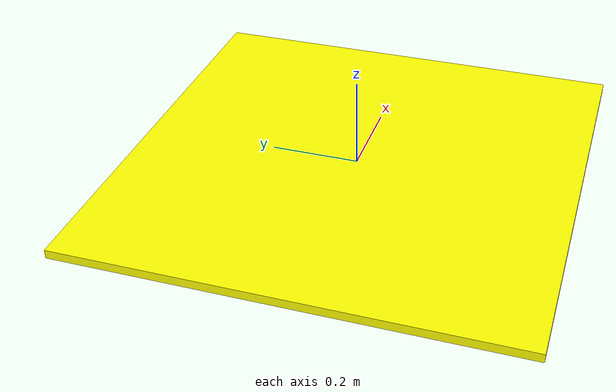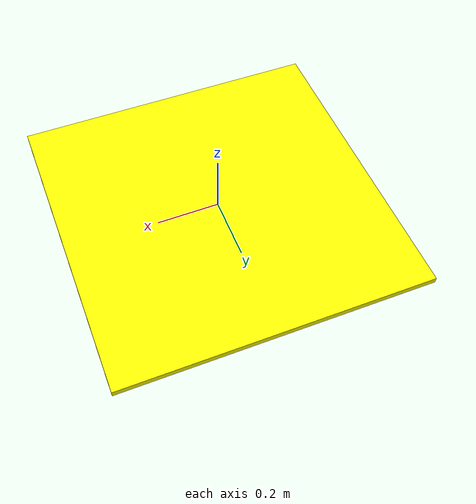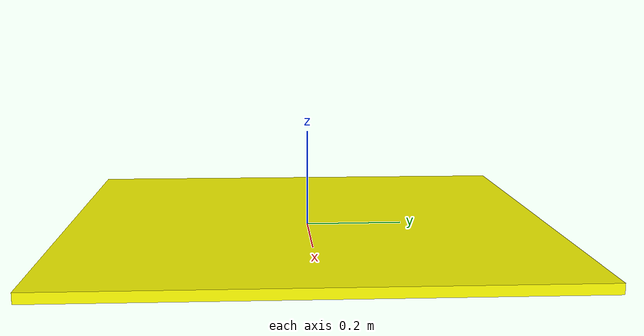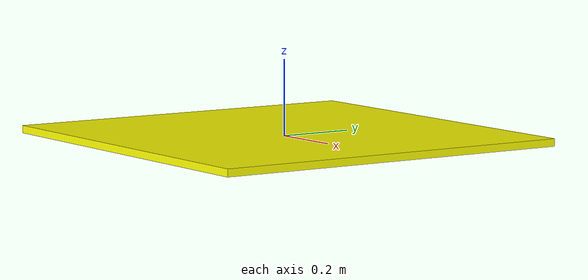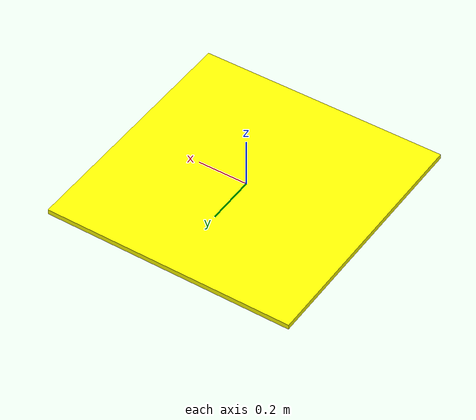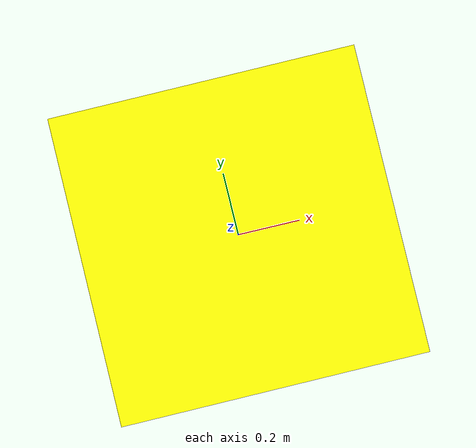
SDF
<?xml version="1.0"?>
<sdf version="1.6">
  <model name="plate" canonical_link='link1'>
    <link name="link1">
      <inertial>
        <mass>100.0</mass>
        <inertia>
          <ixx>1.0</ixx>
          <iyy>1.0</iyy>
          <izz>1.0</izz>
          <ixy>0.0</ixy>
          <ixz>0.0</ixz>
          <iyz>0.0</iyz>
        </inertia>
      </inertial>
      <collision name="collision">
        <geometry><box><size>1 1 0.02</size></box></geometry>
      </collision>
      <visual name="visual">
        <geometry><box><size>1 1 0.02</size></box></geometry>
        <material>
          <ambient>1 1 0 1</ambient>
          <diffuse>1 1 0 1</diffuse>
        </material>
      </visual>
    </link>
    <link name="link2">
      <inertial>
        <mass>100.0</mass>
        <inertia>
          <ixx>1.0</ixx>
          <iyy>1.0</iyy>
          <izz>1.0</izz>
          <ixy>0.0</ixy>
          <ixz>0.0</ixz>
          <iyz>0.0</iyz>
        </inertia>
      </inertial>
      <collision name="collision">
        <geometry><box><size>1 1 0.02</size></box></geometry>
      </collision>
      <visual name="visual">
        <geometry><box><size>1 1 0.02</size></box></geometry>
        <material>
          <ambient>1 1 0 1</ambient>
          <diffuse>1 1 0 1</diffuse>
        </material>
      </visual>
    </link>
    <joint name="plate_joint" type="prismatic">
      <parent>link1</parent>
      <child>link2</child>
      <axis>
        <xyz>0 0 1</xyz>
      </axis>
    </joint>
  </model>
</sdf>
